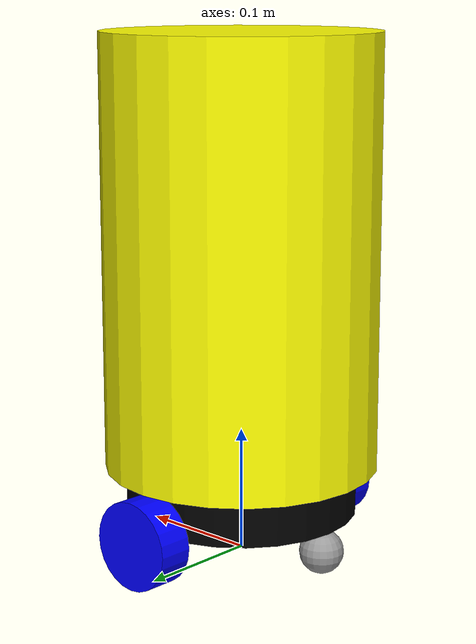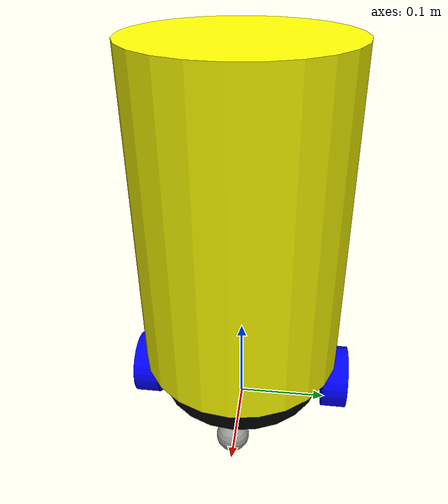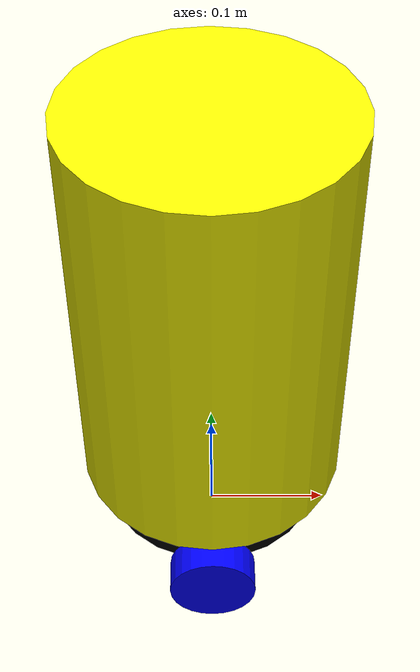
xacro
<?xml version="1.0"?>
<robot xmlns:xacro="http://www.ros.org/wiki/xacro" name="homer">

  <xacro:arg name="use_ros2_control" default="true" />
  <xacro:arg name="sim_mode" default="false" />

  <xacro:include filename="material.xacro" />

  <xacro:include filename="homer_.xacro" />

  <xacro:if value="$(arg use_ros2_control)">
      <xacro:include filename="ros2_control.xacro" />
  </xacro:if>
  <xacro:unless value="$(arg use_ros2_control)">
      <xacro:include filename="gazebo.xacro"/>
  </xacro:unless>

</robot>

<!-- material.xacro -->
<robot xmlns:xacro="http://www.ros.org/wiki/xacro" >

    <material name="red">
        <color rgba="1 0 0 1"/>
    </material>

    <material name="green">
        <color rgba="0 1 0 1"/>
    </material>

    <material name="blue">
        <color rgba="0 0 1 1"/>
    </material>

    <material name="white">
        <color rgba="1 1 1 1"/>
    </material>

    <material name="black">
        <color rgba="0 0 0 1"/>
    </material>

    <material name="orange">
        <color rgba="1 0.65 0 1"/>
    </material>

    <material name="yellow">
        <color rgba="1 1 0 1"/>
    </material>

    <xacro:property name="PI" value="3.14159" />
    <xacro:property name="effort" value="30.0" />
    <xacro:property name="velocity" value="10.0" />

    <xacro:macro name="default_inertial" params="mass">
        <inertial>
            <mass value="${mass}" />
            <inertia ixx="0.01" ixy="0.0" ixz="0.0"
                     iyy="0.01" iyz="0.0"
                     izz="0.01" />
        </inertial>
    </xacro:macro>

    <xacro:macro name="box_inertia" params="m l w h xyz rpy">
        <inertial>
            <origin xyz="${xyz}" rpy="${rpy}" />
            <mass value="${m}" />
            <inertia ixx="${(m/12) * (h*h + l*l)}" ixy="0" ixz="0"
                     iyy="${(m/12) * (w*w + l*l)}" iyz="0"
                     izz="${(m/12) * (w*w + h*h)}" />
        </inertial>
    </xacro:macro>

    <xacro:macro name="box_inertia" params="m l w h xyz rpy">
        <inertial>
            <origin xyz="${xyz}" rpy="${rpy}" />
            <mass value="${m}" />
            <inertia ixx="${(m/12) * (h*h + l*l)}" ixy="0" ixz="0"
                     iyy="${(m/12) * (w*w + l*l)}" iyz="0"
                     izz="${(m/12) * (w*w + h*h)}" />
        </inertial>
    </xacro:macro>

    <xacro:macro name="cylinder_inertia" params="m r h xyz rpy">
        <inertial>
            <origin xyz="${xyz}" rpy="${rpy}" />
            <mass value="${m}" />
            <inertia ixx="${(m/12) * (3*r*r + h*h)}" ixy="0" ixz="0"
                     iyy="${(m/12) * (3*r*r + h*h)}" iyz="0"
                     izz="${(m/2) * (r*r)}" />
        </inertial>
    </xacro:macro>

    <xacro:macro name="sphere_inertia" params="m r xyz rpy">
        <inertial>
            <origin xyz="${xyz}" rpy="${rpy}" />
            <mass value="${m}" />
            <inertia ixx="${(2/5) * m * r * r}" ixy="0" ixz="0"
                     iyy="${(2/5) * m * r * r}" iyz="0"
                     izz="${(2/5) * m * r * r}" />
        </inertial>
    </xacro:macro>

</robot>

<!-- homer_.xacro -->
<robot xmlns:xacro="http://www.ros.org/wiki/xacro">

    <!-- Macros -->
    <xacro:property name="chassi_radius" value="0.093" />
    <xacro:property name="chassi_length" value="0.045" />

    <xacro:property name="body_radius" value="0.11" />
    <xacro:property name="body_length" value="0.345" />

    <xacro:property name="wheel_radius" value="0.035" />
    <xacro:property name="wheel_length" value="0.028" />

    <!-- Links -->

    <link name="base_footprint" />

    <link name="base_link" />

    <link name="chassi">
        <visual>
            <origin xyz="0.0 0.0 ${chassi_length/2}" rpy="0.0 0.0 0.0" />
            <geometry>
                <cylinder radius="${chassi_radius}" length="${chassi_length}" />
            </geometry>
            <material name="black" />
        </visual>
        <collision>
            <origin xyz="0.0 0.0 ${chassi_length/2}" rpy="0.0 0.0 0.0" />
            <geometry>
                <cylinder radius="${chassi_radius}" length="${chassi_length}" />
            </geometry>
        </collision>
        <xacro:cylinder_inertia m="1.0" r="${chassi_radius}" h="${chassi_length}"
                           xyz="0 0 ${chassi_length/2}" rpy="0 0 0"/>

    </link>
    <gazebo reference="chassi">
        <material>Gazebo/Black</material>
    </gazebo>

    <link name="body">
        <visual>
            <origin xyz="0.0 0.0 0.0" rpy="0.0 0.0 0.0" />
            <geometry>
                <cylinder radius="${body_radius}" length="${body_length}" />
            </geometry>
            <material name="yellow" />
        </visual>
        <collision>
            <origin xyz="0.0 0.0 0.0" rpy="0.0 0.0 0.0" />
            <geometry>
                <cylinder radius="${body_radius}" length="${body_length}" />
            </geometry>
        </collision>
        <xacro:cylinder_inertia m="0.5" r="${body_radius}" h="${body_length}"
                           xyz="0 0 0" rpy="0 0 0"/>

    </link>
    <gazebo reference="body">
        <material>Gazebo/Yellow</material>
    </gazebo>

    <xacro:macro name="wheel_link" params="prefix ">
        <link name="${prefix}_wheel">
            <visual>
                <origin xyz="0.0 0.0 0.0" rpy="0.0 0.0 0.0" />
                <geometry>
                    <cylinder radius="${wheel_radius}" length="${wheel_length}" />
                </geometry>
                <material name="blue" />
            </visual>
            <collision>
                <origin xyz="0.0 0.0 0.0" rpy="0.0 0.0 0.0" />
                <geometry>
                    <sphere radius="${wheel_radius}"/>
                </geometry>
            </collision>
            <xacro:sphere_inertia m="1.0" r="${2*wheel_radius}"
                           xyz="0 0 0" rpy="0 0 0"/>
        </link>
        <gazebo reference="${prefix}_wheel">
            <material>Gazebo/Blue</material>
            <mu1 value="0.01"/>
            <mu2 value="0.01"/>
        </gazebo>
    </xacro:macro>

    <xacro:wheel_link prefix="right" />
    <xacro:wheel_link prefix="left" />

    <xacro:macro name="caster_wheel_link" params="prefix">
        <link name="caster_wheel_${prefix}">
            <visual>
                <origin xyz="0.0 0.0 0.0" rpy="0.0 0.0 0.0" />
                <geometry>
                    <sphere radius="${wheel_radius/2}" />
                </geometry>
            </visual>
            <collision>
                <origin xyz="0.0 0.0 0.0" rpy="0.0 0.0 0.0" />
                <geometry>
                    <sphere radius="${wheel_radius/2}" />
                </geometry>
            </collision>
            <xacro:sphere_inertia m="0.5" r="${wheel_radius}"
                           xyz="0 0 0" rpy="0 0 0"/>

        </link>
        <gazebo reference="caster_wheel_${prefix}">
            <material>Gazebo/Grey</material>
            <mu1 value="0.01"/>
            <mu2 value="0.01"/>
        </gazebo>
    </xacro:macro>

    <xacro:caster_wheel_link prefix="front" />
    <xacro:caster_wheel_link prefix="rear" />

    <!-- Joints -->

    <joint name="base_footprint_joint" type="fixed">
        <parent link="base_footprint" />
        <child link="base_link" />
        <origin xyz="0.0 0.0 ${wheel_radius}" rpy="0.0 0.0 0.0" />
    </joint>

    <joint name="chassi_joint" type="fixed">
        <parent link="base_link" />
        <child link="chassi" />
        <origin xyz="0.0 0.0 0.0" rpy="0.0 0.0 0.0" />
    </joint>

    <joint name="body_joint" type="fixed">
        <parent link="chassi" />
        <child link="body" />
        <origin xyz="0.0 0.0 0.21" rpy="0.0 0.0 0.0" />
    </joint>

    <joint name="caster_1" type="fixed">
        <parent link="chassi" />
        <child link="caster_wheel_front" />
        <origin xyz="0.085 0.0 -0.016" rpy="0.0 0.0 0.0" />
    </joint>

    <joint name="caster_2" type="fixed">
        <parent link="chassi" />
        <child link="caster_wheel_rear" />
        <origin xyz="-0.085 0.0 -0.016" rpy="0.0 0.0 0.0" />
    </joint>

    <!-- Moving Joints-->

    <joint name="joint_1" type="continuous">
        <parent link="chassi" />
        <child link="right_wheel" />
        <axis xyz="0 0 1 " />
        <origin xyz="0 -0.11 0" rpy="-${pi/2} 0 0" />
    </joint>

    <joint name="joint_2" type="continuous">
        <parent link="chassi" />
        <child link="left_wheel" />
        <axis xyz="0 0 -1" />
        <origin xyz="0 0.11 0" rpy="${pi/2} 0 0" />
    </joint>

</robot>
